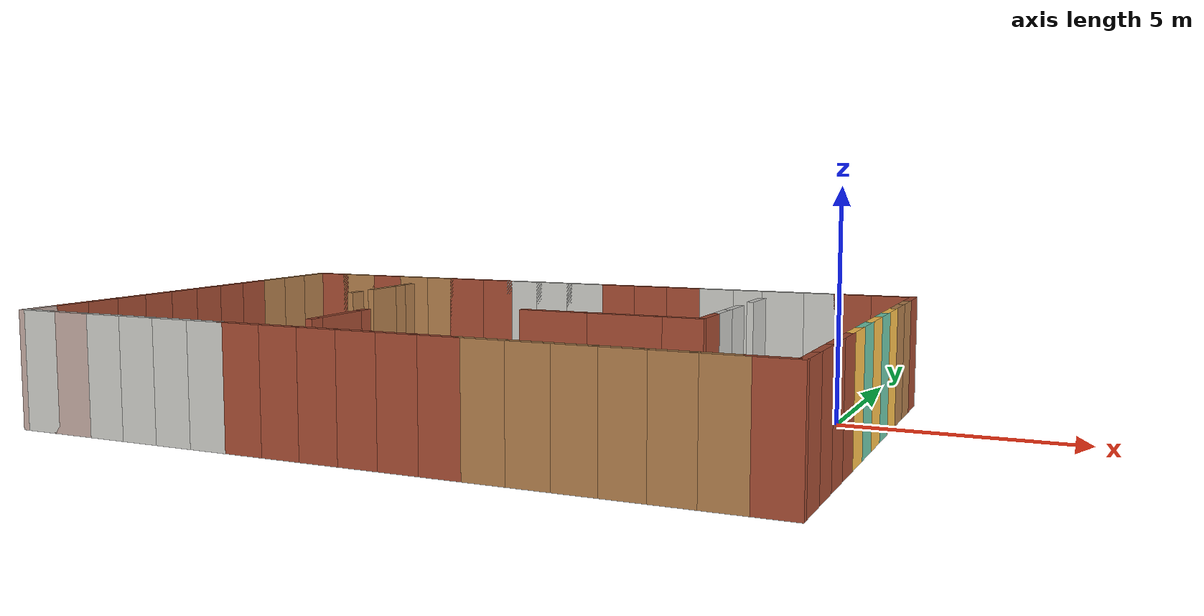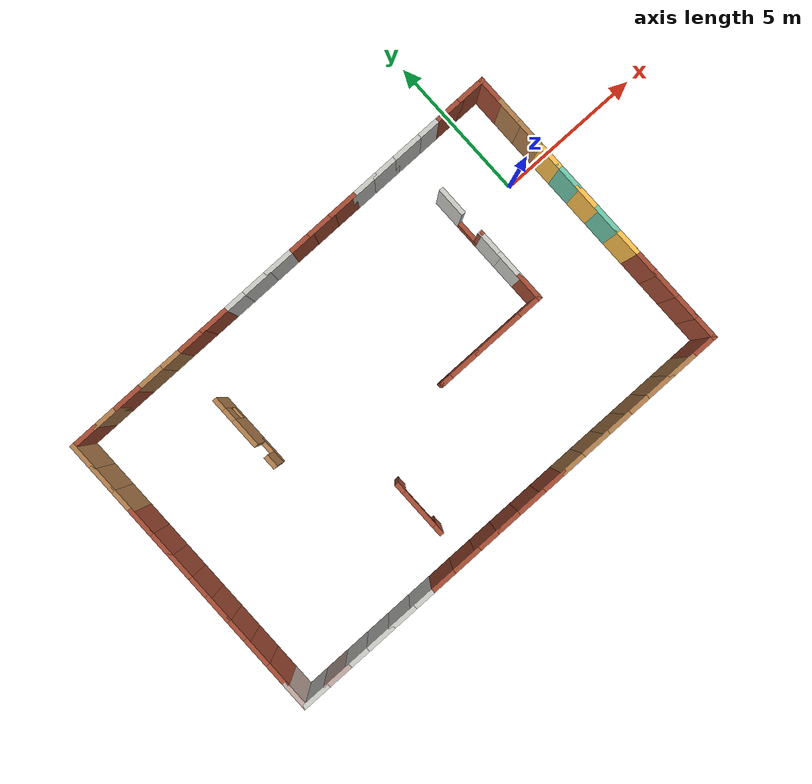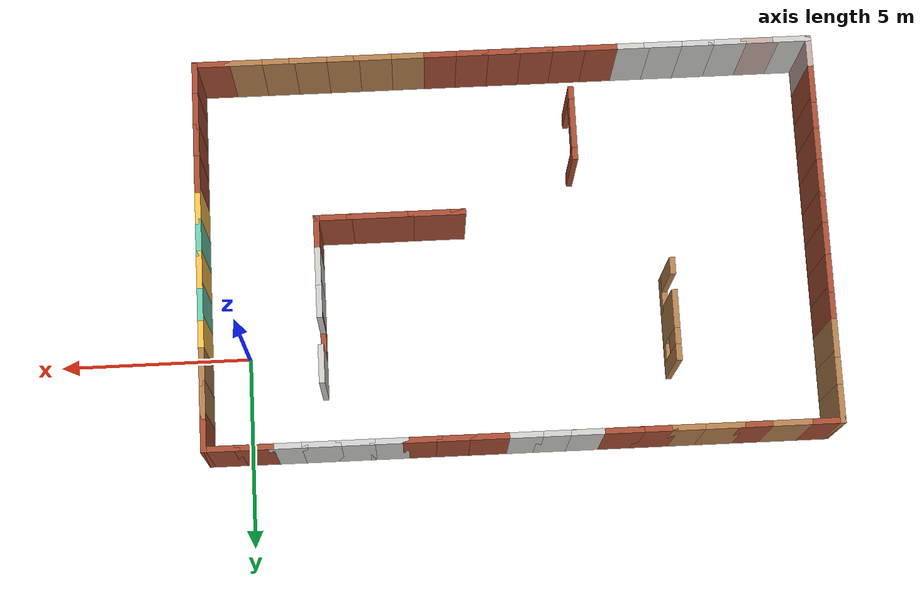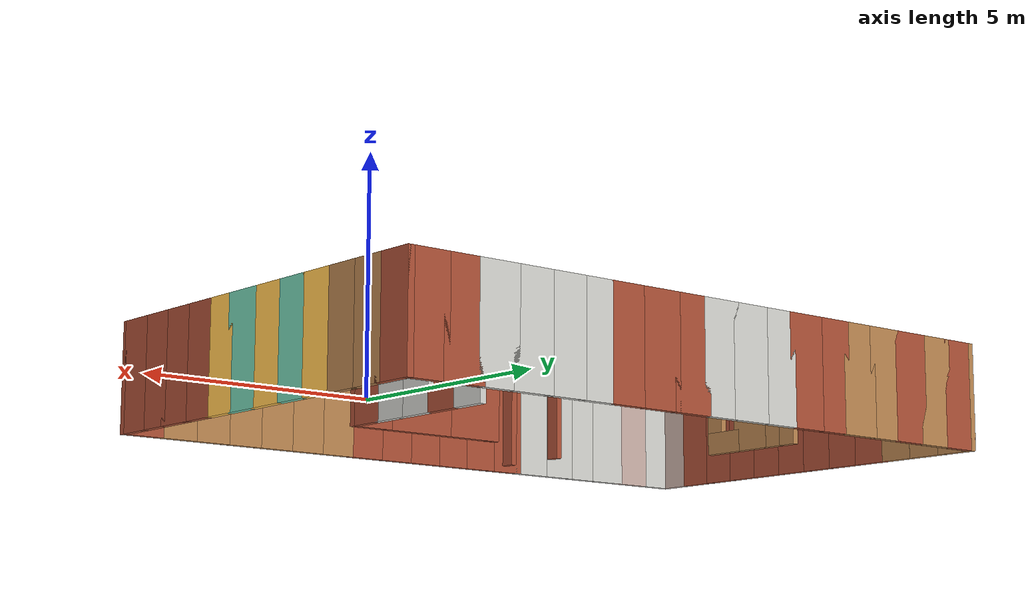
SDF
<?xml version='1.0'?>
<sdf version='1.7'>
  <model name='mapa05'>
    <pose>-7.01219 -2.35521 0 0 -0 0</pose>
    <link name='Wall_101'>
      <collision name='Wall_101_Collision'>
        <geometry>
          <box>
            <size>1 0.15 2.5</size>
          </box>
        </geometry>
        <pose>0 0 1.25 0 -0 0</pose>
      </collision>
      <visual name='Wall_101_Visual'>
        <pose>0 0 1.25 0 -0 0</pose>
        <geometry>
          <box>
            <size>1 0.15 2.5</size>
          </box>
        </geometry>
        <material>
          <script>
            <uri>file://media/materials/scripts/gazebo.material</uri>
            <name>Gazebo/Bricks</name>
          </script>
          <ambient>1 1 1 1</ambient>
        </material>
        <meta>
          <layer>0</layer>
        </meta>
      </visual>
      <pose>-8.075 2.125 0 0 -0 1.5708</pose>
    </link>
    <link name='Wall_102'>
      <collision name='Wall_102_Collision'>
        <geometry>
          <box>
            <size>1 0.15 2.5</size>
          </box>
        </geometry>
        <pose>0 0 1.25 0 -0 0</pose>
      </collision>
      <visual name='Wall_102_Visual'>
        <pose>0 0 1.25 0 -0 0</pose>
        <geometry>
          <box>
            <size>1 0.15 2.5</size>
          </box>
        </geometry>
        <material>
          <script>
            <uri>file://media/materials/scripts/gazebo.material</uri>
            <name>Gazebo/Wood</name>
          </script>
          <ambient>1 1 1 1</ambient>
        </material>
        <meta>
          <layer>0</layer>
        </meta>
      </visual>
      <pose>-8.075 2.975 0 0 -0 1.5708</pose>
    </link>
    <link name='Wall_103'>
      <collision name='Wall_103_Collision'>
        <geometry>
          <box>
            <size>1 0.15 2.5</size>
          </box>
        </geometry>
        <pose>0 0 1.25 0 -0 0</pose>
      </collision>
      <visual name='Wall_103_Visual'>
        <pose>0 0 1.25 0 -0 0</pose>
        <geometry>
          <box>
            <size>1 0.15 2.5</size>
          </box>
        </geometry>
        <material>
          <script>
            <uri>file://media/materials/scripts/gazebo.material</uri>
            <name>Gazebo/Wood</name>
          </script>
          <ambient>1 1 1 1</ambient>
        </material>
        <meta>
          <layer>0</layer>
        </meta>
      </visual>
      <pose>-8.075 3.825 0 0 -0 1.5708</pose>
    </link>
    <link name='Wall_104'>
      <collision name='Wall_104_Collision'>
        <geometry>
          <box>
            <size>1 0.15 2.5</size>
          </box>
        </geometry>
        <pose>0 0 1.25 0 -0 0</pose>
      </collision>
      <visual name='Wall_104_Visual'>
        <pose>0 0 1.25 0 -0 0</pose>
        <geometry>
          <box>
            <size>1 0.15 2.5</size>
          </box>
        </geometry>
        <material>
          <script>
            <uri>file://media/materials/scripts/gazebo.material</uri>
            <name>Gazebo/Wood</name>
          </script>
          <ambient>1 1 1 1</ambient>
        </material>
        <meta>
          <layer>0</layer>
        </meta>
      </visual>
      <pose>-8.075 4.675 0 0 -0 1.5708</pose>
    </link>
    <link name='Wall_105'>
      <collision name='Wall_105_Collision'>
        <geometry>
          <box>
            <size>1 0.15 2.5</size>
          </box>
        </geometry>
        <pose>0 0 1.25 0 -0 0</pose>
      </collision>
      <visual name='Wall_105_Visual'>
        <pose>0 0 1.25 0 -0 0</pose>
        <geometry>
          <box>
            <size>1 0.15 2.5</size>
          </box>
        </geometry>
        <material>
          <script>
            <uri>file://media/materials/scripts/gazebo.material</uri>
            <name>Gazebo/Bricks</name>
          </script>
          <ambient>1 1 1 1</ambient>
        </material>
        <meta>
          <layer>0</layer>
        </meta>
      </visual>
      <pose>-7.65 5.1 0 0 -0 0</pose>
    </link>
    <link name='Wall_106'>
      <collision name='Wall_106_Collision'>
        <geometry>
          <box>
            <size>1 0.15 2.5</size>
          </box>
        </geometry>
        <pose>0 0 1.25 0 -0 0</pose>
      </collision>
      <visual name='Wall_106_Visual'>
        <pose>0 0 1.25 0 -0 0</pose>
        <geometry>
          <box>
            <size>1 0.15 2.5</size>
          </box>
        </geometry>
        <material>
          <script>
            <uri>file://media/materials/scripts/gazebo.material</uri>
            <name>Gazebo/Wood</name>
          </script>
          <ambient>1 1 1 1</ambient>
        </material>
        <meta>
          <layer>0</layer>
        </meta>
      </visual>
      <pose>-6.8 5.1 0 0 -0 0</pose>
    </link>
    <link name='Wall_107'>
      <collision name='Wall_107_Collision'>
        <geometry>
          <box>
            <size>1 0.15 2.5</size>
          </box>
        </geometry>
        <pose>0 0 1.25 0 -0 0</pose>
      </collision>
      <visual name='Wall_107_Visual'>
        <pose>0 0 1.25 0 -0 0</pose>
        <geometry>
          <box>
            <size>1 0.15 2.5</size>
          </box>
        </geometry>
        <material>
          <script>
            <uri>file://media/materials/scripts/gazebo.material</uri>
            <name>Gazebo/Bricks</name>
          </script>
          <ambient>1 1 1 1</ambient>
        </material>
        <meta>
          <layer>0</layer>
        </meta>
      </visual>
      <pose>-5.95 5.1 0 0 -0 0</pose>
    </link>
    <link name='Wall_108'>
      <collision name='Wall_108_Collision'>
        <geometry>
          <box>
            <size>1 0.15 2.5</size>
          </box>
        </geometry>
        <pose>0 0 1.25 0 -0 0</pose>
      </collision>
      <visual name='Wall_108_Visual'>
        <pose>0 0 1.25 0 -0 0</pose>
        <geometry>
          <box>
            <size>1 0.15 2.5</size>
          </box>
        </geometry>
        <material>
          <script>
            <uri>file://media/materials/scripts/gazebo.material</uri>
            <name>Gazebo/Wood</name>
          </script>
          <ambient>1 1 1 1</ambient>
        </material>
        <meta>
          <layer>0</layer>
        </meta>
      </visual>
      <pose>-5.1 5.1 0 0 -0 0</pose>
    </link>
    <link name='Wall_109'>
      <collision name='Wall_109_Collision'>
        <geometry>
          <box>
            <size>1 0.15 2.5</size>
          </box>
        </geometry>
        <pose>0 0 1.25 0 -0 0</pose>
      </collision>
      <visual name='Wall_109_Visual'>
        <pose>0 0 1.25 0 -0 0</pose>
        <geometry>
          <box>
            <size>1 0.15 2.5</size>
          </box>
        </geometry>
        <material>
          <script>
            <uri>file://media/materials/scripts/gazebo.material</uri>
            <name>Gazebo/Wood</name>
          </script>
          <ambient>1 1 1 1</ambient>
        </material>
        <meta>
          <layer>0</layer>
        </meta>
      </visual>
      <pose>-4.25 5.1 0 0 -0 0</pose>
    </link>
    <link name='Wall_110'>
      <collision name='Wall_110_Collision'>
        <geometry>
          <box>
            <size>1 0.15 2.5</size>
          </box>
        </geometry>
        <pose>0 0 1.25 0 -0 0</pose>
      </collision>
      <visual name='Wall_110_Visual'>
        <pose>0 0 1.25 0 -0 0</pose>
        <geometry>
          <box>
            <size>1 0.15 2.5</size>
          </box>
        </geometry>
        <material>
          <script>
            <uri>file://media/materials/scripts/gazebo.material</uri>
            <name>Gazebo/Bricks</name>
          </script>
          <ambient>1 1 1 1</ambient>
        </material>
        <meta>
          <layer>0</layer>
        </meta>
      </visual>
      <pose>-3.4 5.1 0 0 -0 0</pose>
    </link>
    <link name='Wall_111'>
      <collision name='Wall_111_Collision'>
        <geometry>
          <box>
            <size>1 0.15 2.5</size>
          </box>
        </geometry>
        <pose>0 0 1.25 0 -0 0</pose>
      </collision>
      <visual name='Wall_111_Visual'>
        <pose>0 0 1.25 0 -0 0</pose>
        <geometry>
          <box>
            <size>1 0.15 2.5</size>
          </box>
        </geometry>
        <material>
          <script>
            <uri>file://media/materials/scripts/gazebo.material</uri>
            <name>Gazebo/Bricks</name>
          </script>
          <ambient>1 1 1 1</ambient>
        </material>
        <meta>
          <layer>0</layer>
        </meta>
      </visual>
      <pose>-2.55 5.1 0 0 -0 0</pose>
    </link>
    <link name='Wall_112'>
      <collision name='Wall_112_Collision'>
        <geometry>
          <box>
            <size>1 0.15 2.5</size>
          </box>
        </geometry>
        <pose>0 0 1.25 0 -0 0</pose>
      </collision>
      <visual name='Wall_112_Visual'>
        <pose>0 0 1.25 0 -0 0</pose>
        <geometry>
          <box>
            <size>1 0.15 2.5</size>
          </box>
        </geometry>
        <material>
          <script>
            <uri>file://media/materials/scripts/gazebo.material</uri>
            <name>Gazebo/CeilingTiled</name>
          </script>
          <ambient>0.921569 0.807843 0.615686 1</ambient>
        </material>
        <meta>
          <layer>0</layer>
        </meta>
      </visual>
      <pose>-1.7 5.1 0 0 -0 0</pose>
    </link>
    <link name='Wall_113'>
      <collision name='Wall_113_Collision'>
        <geometry>
          <box>
            <size>1 0.15 2.5</size>
          </box>
        </geometry>
        <pose>0 0 1.25 0 -0 0</pose>
      </collision>
      <visual name='Wall_113_Visual'>
        <pose>0 0 1.25 0 -0 0</pose>
        <geometry>
          <box>
            <size>1 0.15 2.5</size>
          </box>
        </geometry>
        <material>
          <script>
            <uri>file://media/materials/scripts/gazebo.material</uri>
            <name>Gazebo/CeilingTiled</name>
          </script>
          <ambient>0.921569 0.807843 0.615686 1</ambient>
        </material>
        <meta>
          <layer>0</layer>
        </meta>
      </visual>
      <pose>-0.85 5.1 0 0 -0 0</pose>
    </link>
    <link name='Wall_114'>
      <collision name='Wall_114_Collision'>
        <geometry>
          <box>
            <size>1 0.15 2.5</size>
          </box>
        </geometry>
        <pose>0 0 1.25 0 -0 0</pose>
      </collision>
      <visual name='Wall_114_Visual'>
        <pose>0 0 1.25 0 -0 0</pose>
        <geometry>
          <box>
            <size>1 0.15 2.5</size>
          </box>
        </geometry>
        <material>
          <script>
            <uri>file://media/materials/scripts/gazebo.material</uri>
            <name>Gazebo/CeilingTiled</name>
          </script>
          <ambient>0.921569 0.807843 0.615686 1</ambient>
        </material>
        <meta>
          <layer>0</layer>
        </meta>
      </visual>
      <pose>-0 5.1 0 0 -0 0</pose>
    </link>
    <link name='Wall_115'>
      <collision name='Wall_115_Collision'>
        <geometry>
          <box>
            <size>1 0.15 2.5</size>
          </box>
        </geometry>
        <pose>0 0 1.25 0 -0 0</pose>
      </collision>
      <visual name='Wall_115_Visual'>
        <pose>0 0 1.25 0 -0 0</pose>
        <geometry>
          <box>
            <size>1 0.15 2.5</size>
          </box>
        </geometry>
        <material>
          <script>
            <uri>file://media/materials/scripts/gazebo.material</uri>
            <name>Gazebo/Bricks</name>
          </script>
          <ambient>1 1 1 1</ambient>
        </material>
        <meta>
          <layer>0</layer>
        </meta>
      </visual>
      <pose>0.85 5.1 0 0 -0 0</pose>
    </link>
    <link name='Wall_116'>
      <collision name='Wall_116_Collision'>
        <geometry>
          <box>
            <size>1 0.15 2.5</size>
          </box>
        </geometry>
        <pose>0 0 1.25 0 -0 0</pose>
      </collision>
      <visual name='Wall_116_Visual'>
        <pose>0 0 1.25 0 -0 0</pose>
        <geometry>
          <box>
            <size>1 0.15 2.5</size>
          </box>
        </geometry>
        <material>
          <script>
            <uri>file://media/materials/scripts/gazebo.material</uri>
            <name>Gazebo/Bricks</name>
          </script>
          <ambient>1 1 1 1</ambient>
        </material>
        <meta>
          <layer>0</layer>
        </meta>
      </visual>
      <pose>1.7 5.1 0 0 -0 0</pose>
    </link>
    <link name='Wall_117'>
      <collision name='Wall_117_Collision'>
        <geometry>
          <box>
            <size>1 0.15 2.5</size>
          </box>
        </geometry>
        <pose>0 0 1.25 0 -0 0</pose>
      </collision>
      <visual name='Wall_117_Visual'>
        <pose>0 0 1.25 0 -0 0</pose>
        <geometry>
          <box>
            <size>1 0.15 2.5</size>
          </box>
        </geometry>
        <material>
          <script>
            <uri>file://media/materials/scripts/gazebo.material</uri>
            <name>Gazebo/Bricks</name>
          </script>
          <ambient>1 1 1 1</ambient>
        </material>
        <meta>
          <layer>0</layer>
        </meta>
      </visual>
      <pose>2.55 5.1 0 0 -0 0</pose>
    </link>
    <link name='Wall_118'>
      <collision name='Wall_118_Collision'>
        <geometry>
          <box>
            <size>1 0.15 2.5</size>
          </box>
        </geometry>
        <pose>0 0 1.25 0 -0 0</pose>
      </collision>
      <visual name='Wall_118_Visual'>
        <pose>0 0 1.25 0 -0 0</pose>
        <geometry>
          <box>
            <size>1 0.15 2.5</size>
          </box>
        </geometry>
        <material>
          <script>
            <uri>file://media/materials/scripts/gazebo.material</uri>
            <name>Gazebo/CeilingTiled</name>
          </script>
          <ambient>0.996078 0.47451 0.0196078 1</ambient>
        </material>
        <meta>
          <layer>0</layer>
        </meta>
      </visual>
      <pose>3.4 5.1 0 0 -0 0</pose>
    </link>
    <link name='Wall_119'>
      <collision name='Wall_119_Collision'>
        <geometry>
          <box>
            <size>1 0.15 2.5</size>
          </box>
        </geometry>
        <pose>0 0 1.25 0 -0 0</pose>
      </collision>
      <visual name='Wall_119_Visual'>
        <pose>0 0 1.25 0 -0 0</pose>
        <geometry>
          <box>
            <size>1 0.15 2.5</size>
          </box>
        </geometry>
        <material>
          <script>
            <uri>file://media/materials/scripts/gazebo.material</uri>
            <name>Gazebo/CeilingTiled</name>
          </script>
          <ambient>0.996078 0.47451 0.0196078 1</ambient>
        </material>
        <meta>
          <layer>0</layer>
        </meta>
      </visual>
      <pose>4.25 5.1 0 0 -0 0</pose>
    </link>
    <link name='Wall_120'>
      <collision name='Wall_120_Collision'>
        <geometry>
          <box>
            <size>1 0.15 2.5</size>
          </box>
        </geometry>
        <pose>0 0 1.25 0 -0 0</pose>
      </collision>
      <visual name='Wall_120_Visual'>
        <pose>0 0 1.25 0 -0 0</pose>
        <geometry>
          <box>
            <size>1 0.15 2.5</size>
          </box>
        </geometry>
        <material>
          <script>
            <uri>file://media/materials/scripts/gazebo.material</uri>
            <name>Gazebo/CeilingTiled</name>
          </script>
          <ambient>0.996078 0.47451 0.0196078 1</ambient>
        </material>
        <meta>
          <layer>0</layer>
        </meta>
      </visual>
      <pose>5.1 5.1 0 0 -0 0</pose>
    </link>
    <link name='Wall_121'>
      <collision name='Wall_121_Collision'>
        <geometry>
          <box>
            <size>1 0.15 2.5</size>
          </box>
        </geometry>
        <pose>0 0 1.25 0 -0 0</pose>
      </collision>
      <visual name='Wall_121_Visual'>
        <pose>0 0 1.25 0 -0 0</pose>
        <geometry>
          <box>
            <size>1 0.15 2.5</size>
          </box>
        </geometry>
        <material>
          <script>
            <uri>file://media/materials/scripts/gazebo.material</uri>
            <name>Gazebo/CeilingTiled</name>
          </script>
          <ambient>0.996078 0.47451 0.0196078 1</ambient>
        </material>
        <meta>
          <layer>0</layer>
        </meta>
      </visual>
      <pose>5.95 5.1 0 0 -0 0</pose>
    </link>
    <link name='Wall_122'>
      <collision name='Wall_122_Collision'>
        <geometry>
          <box>
            <size>1 0.15 2.5</size>
          </box>
        </geometry>
        <pose>0 0 1.25 0 -0 0</pose>
      </collision>
      <visual name='Wall_122_Visual'>
        <pose>0 0 1.25 0 -0 0</pose>
        <geometry>
          <box>
            <size>1 0.15 2.5</size>
          </box>
        </geometry>
        <material>
          <script>
            <uri>file://media/materials/scripts/gazebo.material</uri>
            <name>Gazebo/Bricks</name>
          </script>
          <ambient>1 1 1 1</ambient>
        </material>
        <meta>
          <layer>0</layer>
        </meta>
      </visual>
      <pose>6.8 5.1 0 0 -0 0</pose>
    </link>
    <link name='Wall_123'>
      <collision name='Wall_123_Collision'>
        <geometry>
          <box>
            <size>1 0.15 2.5</size>
          </box>
        </geometry>
        <pose>0 0 1.25 0 -0 0</pose>
      </collision>
      <visual name='Wall_123_Visual'>
        <pose>0 0 1.25 0 -0 0</pose>
        <geometry>
          <box>
            <size>1 0.15 2.5</size>
          </box>
        </geometry>
        <material>
          <script>
            <uri>file://media/materials/scripts/gazebo.material</uri>
            <name>Gazebo/Bricks</name>
          </script>
          <ambient>1 1 1 1</ambient>
        </material>
        <meta>
          <layer>0</layer>
        </meta>
      </visual>
      <pose>7.65 5.1 0 0 -0 0</pose>
    </link>
    <link name='Wall_127'>
      <collision name='Wall_127_Collision'>
        <geometry>
          <box>
            <size>1 0.15 2.5</size>
          </box>
        </geometry>
        <pose>0 0 1.25 0 -0 0</pose>
      </collision>
      <visual name='Wall_127_Visual'>
        <pose>0 0 1.25 0 -0 0</pose>
        <geometry>
          <box>
            <size>1 0.15 2.5</size>
          </box>
        </geometry>
        <material>
          <script>
            <uri>file://media/materials/scripts/gazebo.material</uri>
            <name>Gazebo/Grey</name>
          </script>
          <ambient>1 0.764706 0.305882 1</ambient>
        </material>
        <meta>
          <layer>0</layer>
        </meta>
      </visual>
      <pose>8.075 2.125 0 0 -0 -1.5708</pose>
    </link>
    <link name='Wall_128'>
      <collision name='Wall_128_Collision'>
        <geometry>
          <box>
            <size>1 0.15 2.5</size>
          </box>
        </geometry>
        <pose>0 0 1.25 0 -0 0</pose>
      </collision>
      <visual name='Wall_128_Visual'>
        <pose>0 0 1.25 0 -0 0</pose>
        <geometry>
          <box>
            <size>1 0.15 2.5</size>
          </box>
        </geometry>
        <material>
          <script>
            <uri>file://media/materials/scripts/gazebo.material</uri>
            <name>Gazebo/Grey</name>
          </script>
          <ambient>0.435294 0.796078 0.67451 1</ambient>
        </material>
        <meta>
          <layer>0</layer>
        </meta>
      </visual>
      <pose>8.075 1.275 0 0 -0 -1.5708</pose>
    </link>
    <link name='Wall_129'>
      <collision name='Wall_129_Collision'>
        <geometry>
          <box>
            <size>1 0.15 2.5</size>
          </box>
        </geometry>
        <pose>0 0 1.25 0 -0 0</pose>
      </collision>
      <visual name='Wall_129_Visual'>
        <pose>0 0 1.25 0 -0 0</pose>
        <geometry>
          <box>
            <size>1 0.15 2.5</size>
          </box>
        </geometry>
        <material>
          <script>
            <uri>file://media/materials/scripts/gazebo.material</uri>
            <name>Gazebo/Grey</name>
          </script>
          <ambient>1 0.764706 0.305882 1</ambient>
        </material>
        <meta>
          <layer>0</layer>
        </meta>
      </visual>
      <pose>8.075 0.425 0 0 -0 -1.5708</pose>
    </link>
    <link name='Wall_132'>
      <collision name='Wall_132_Collision'>
        <geometry>
          <box>
            <size>1 0.15 2.5</size>
          </box>
        </geometry>
        <pose>0 0 1.25 0 -0 0</pose>
      </collision>
      <visual name='Wall_132_Visual'>
        <pose>0 0 1.25 0 -0 0</pose>
        <geometry>
          <box>
            <size>1 0.15 2.5</size>
          </box>
        </geometry>
        <material>
          <script>
            <uri>file://media/materials/scripts/gazebo.material</uri>
            <name>Gazebo/Grey</name>
          </script>
          <ambient>0.435294 0.796078 0.67451 1</ambient>
        </material>
        <meta>
          <layer>0</layer>
        </meta>
      </visual>
      <pose>8.075 -0.425 0 0 -0 -1.5708</pose>
    </link>
    <link name='Wall_133'>
      <collision name='Wall_133_Collision'>
        <geometry>
          <box>
            <size>1 0.15 2.5</size>
          </box>
        </geometry>
        <pose>0 0 1.25 0 -0 0</pose>
      </collision>
      <visual name='Wall_133_Visual'>
        <pose>0 0 1.25 0 -0 0</pose>
        <geometry>
          <box>
            <size>1 0.15 2.5</size>
          </box>
        </geometry>
        <material>
          <script>
            <uri>file://media/materials/scripts/gazebo.material</uri>
            <name>Gazebo/Grey</name>
          </script>
          <ambient>1 0.764706 0.305882 1</ambient>
        </material>
        <meta>
          <layer>0</layer>
        </meta>
      </visual>
      <pose>8.075 -1.275 0 0 -0 -1.5708</pose>
    </link>
    <link name='Wall_134'>
      <collision name='Wall_134_Collision'>
        <geometry>
          <box>
            <size>1 0.15 2.5</size>
          </box>
        </geometry>
        <pose>0 0 1.25 0 -0 0</pose>
      </collision>
      <visual name='Wall_134_Visual'>
        <pose>0 0 1.25 0 -0 0</pose>
        <geometry>
          <box>
            <size>1 0.15 2.5</size>
          </box>
        </geometry>
        <material>
          <script>
            <uri>file://media/materials/scripts/gazebo.material</uri>
            <name>Gazebo/Bricks</name>
          </script>
          <ambient>1 1 1 1</ambient>
        </material>
        <meta>
          <layer>0</layer>
        </meta>
      </visual>
      <pose>8.075 -2.125 0 0 -0 -1.5708</pose>
    </link>
    <link name='Wall_135'>
      <collision name='Wall_135_Collision'>
        <geometry>
          <box>
            <size>1 0.15 2.5</size>
          </box>
        </geometry>
        <pose>0 0 1.25 0 -0 0</pose>
      </collision>
      <visual name='Wall_135_Visual'>
        <pose>0 0 1.25 0 -0 0</pose>
        <geometry>
          <box>
            <size>1 0.15 2.5</size>
          </box>
        </geometry>
        <material>
          <script>
            <uri>file://media/materials/scripts/gazebo.material</uri>
            <name>Gazebo/Bricks</name>
          </script>
          <ambient>1 1 1 1</ambient>
        </material>
        <meta>
          <layer>0</layer>
        </meta>
      </visual>
      <pose>8.075 -2.975 0 0 -0 -1.5708</pose>
    </link>
    <link name='Wall_136'>
      <collision name='Wall_136_Collision'>
        <geometry>
          <box>
            <size>1 0.15 2.5</size>
          </box>
        </geometry>
        <pose>0 0 1.25 0 -0 0</pose>
      </collision>
      <visual name='Wall_136_Visual'>
        <pose>0 0 1.25 0 -0 0</pose>
        <geometry>
          <box>
            <size>1 0.15 2.5</size>
          </box>
        </geometry>
        <material>
          <script>
            <uri>file://media/materials/scripts/gazebo.material</uri>
            <name>Gazebo/Bricks</name>
          </script>
          <ambient>1 1 1 1</ambient>
        </material>
        <meta>
          <layer>0</layer>
        </meta>
      </visual>
      <pose>8.075 -3.825 0 0 -0 -1.5708</pose>
    </link>
    <link name='Wall_137'>
      <collision name='Wall_137_Collision'>
        <geometry>
          <box>
            <size>1 0.15 2.5</size>
          </box>
        </geometry>
        <pose>0 0 1.25 0 -0 0</pose>
      </collision>
      <visual name='Wall_137_Visual'>
        <pose>0 0 1.25 0 -0 0</pose>
        <geometry>
          <box>
            <size>1 0.15 2.5</size>
          </box>
        </geometry>
        <material>
          <script>
            <uri>file://media/materials/scripts/gazebo.material</uri>
            <name>Gazebo/Bricks</name>
          </script>
          <ambient>1 1 1 1</ambient>
        </material>
        <meta>
          <layer>0</layer>
        </meta>
      </visual>
      <pose>8.075 -4.675 0 0 -0 -1.5708</pose>
    </link>
    <link name='Wall_141'>
      <collision name='Wall_141_Collision'>
        <geometry>
          <box>
            <size>1 0.15 2.5</size>
          </box>
        </geometry>
        <pose>0 0 1.25 0 -0 0</pose>
      </collision>
      <visual name='Wall_141_Visual'>
        <pose>0 0 1.25 0 -0 0</pose>
        <geometry>
          <box>
            <size>1 0.15 2.5</size>
          </box>
        </geometry>
        <material>
          <script>
            <uri>file://media/materials/scripts/gazebo.material</uri>
            <name>Gazebo/Bricks</name>
          </script>
          <ambient>1 1 1 1</ambient>
        </material>
        <meta>
          <layer>0</layer>
        </meta>
      </visual>
      <pose>8.075 4.675 0 0 -0 -1.5708</pose>
    </link>
    <link name='Wall_142'>
      <collision name='Wall_142_Collision'>
        <geometry>
          <box>
            <size>1 0.15 2.5</size>
          </box>
        </geometry>
        <pose>0 0 1.25 0 -0 0</pose>
      </collision>
      <visual name='Wall_142_Visual'>
        <pose>0 0 1.25 0 -0 0</pose>
        <geometry>
          <box>
            <size>1 0.15 2.5</size>
          </box>
        </geometry>
        <material>
          <script>
            <uri>file://media/materials/scripts/gazebo.material</uri>
            <name>Gazebo/Wood</name>
          </script>
          <ambient>1 1 1 1</ambient>
        </material>
        <meta>
          <layer>0</layer>
        </meta>
      </visual>
      <pose>8.075 3.825 0 0 -0 -1.5708</pose>
    </link>
    <link name='Wall_143'>
      <collision name='Wall_143_Collision'>
        <geometry>
          <box>
            <size>1 0.15 2.5</size>
          </box>
        </geometry>
        <pose>0 0 1.25 0 -0 0</pose>
      </collision>
      <visual name='Wall_143_Visual'>
        <pose>0 0 1.25 0 -0 0</pose>
        <geometry>
          <box>
            <size>1 0.15 2.5</size>
          </box>
        </geometry>
        <material>
          <script>
            <uri>file://media/materials/scripts/gazebo.material</uri>
            <name>Gazebo/Wood</name>
          </script>
          <ambient>1 1 1 1</ambient>
        </material>
        <meta>
          <layer>0</layer>
        </meta>
      </visual>
      <pose>8.075 2.975 0 0 -0 -1.5708</pose>
    </link>
    <link name='Wall_145'>
      <pose>-4.06574 2.86801 0 0 -0 -1.5708</pose>
      <visual name='Wall_145_Visual_0'>
        <pose>-0.290097 0 1.25 0 -0 0</pose>
        <geometry>
          <box>
            <size>0.419806 0.15 2.5</size>
          </box>
        </geometry>
        <material>
          <script>
            <uri>file://media/materials/scripts/gazebo.material</uri>
            <name>Gazebo/Wood</name>
          </script>
          <ambient>1 1 1 1</ambient>
        </material>
        <meta>
          <layer>0</layer>
        </meta>
      </visual>
      <collision name='Wall_145_Collision_0'>
        <geometry>
          <box>
            <size>0.419806 0.15 2.5</size>
          </box>
        </geometry>
        <pose>-0.290097 0 1.25 0 -0 0</pose>
      </collision>
      <visual name='Wall_145_Visual_1'>
        <pose>0.209903 0 0.25 0 -0 0</pose>
        <geometry>
          <box>
            <size>0.580194 0.15 0.5</size>
          </box>
        </geometry>
        <material>
          <script>
            <uri>file://media/materials/scripts/gazebo.material</uri>
            <name>Gazebo/Wood</name>
          </script>
          <ambient>1 1 1 1</ambient>
        </material>
        <meta>
          <layer>0</layer>
        </meta>
      </visual>
      <collision name='Wall_145_Collision_1'>
        <geometry>
          <box>
            <size>0.580194 0.15 0.5</size>
          </box>
        </geometry>
        <pose>0.209903 0 0.25 0 -0 0</pose>
      </collision>
      <visual name='Wall_145_Visual_2'>
        <pose>0.209903 0 1.9 0 -0 0</pose>
        <geometry>
          <box>
            <size>0.580194 0.15 1.2</size>
          </box>
        </geometry>
        <material>
          <script>
            <uri>file://media/materials/scripts/gazebo.material</uri>
            <name>Gazebo/Wood</name>
          </script>
          <ambient>1 1 1 1</ambient>
        </material>
        <meta>
          <layer>0</layer>
        </meta>
      </visual>
      <collision name='Wall_145_Collision_2'>
        <geometry>
          <box>
            <size>0.580194 0.15 1.2</size>
          </box>
        </geometry>
        <pose>0.209903 0 1.9 0 -0 0</pose>
      </collision>
    </link>
    <link name='Wall_146'>
      <collision name='Wall_146_Collision'>
        <geometry>
          <box>
            <size>1 0.15 2.5</size>
          </box>
        </geometry>
        <pose>0 0 1.25 0 -0 0</pose>
      </collision>
      <visual name='Wall_146_Visual'>
        <pose>0 0 1.25 0 -0 0</pose>
        <geometry>
          <box>
            <size>1 0.15 2.5</size>
          </box>
        </geometry>
        <material>
          <script>
            <uri>file://media/materials/scripts/gazebo.material</uri>
            <name>Gazebo/Wood</name>
          </script>
          <ambient>1 1 1 1</ambient>
        </material>
        <meta>
          <layer>0</layer>
        </meta>
      </visual>
      <pose>-4.06574 2.01801 0 0 -0 -1.5708</pose>
    </link>
    <link name='Wall_147'>
      <pose>-4.06574 1.16801 0 0 -0 -1.5708</pose>
      <visual name='Wall_147_Visual_0'>
        <pose>0 0 0.25 0 -0 0</pose>
        <geometry>
          <box>
            <size>1 0.15 0.5</size>
          </box>
        </geometry>
        <material>
          <script>
            <uri>file://media/materials/scripts/gazebo.material</uri>
            <name>Gazebo/Wood</name>
          </script>
          <ambient>1 1 1 1</ambient>
        </material>
        <meta>
          <layer>0</layer>
        </meta>
      </visual>
      <collision name='Wall_147_Collision_0'>
        <geometry>
          <box>
            <size>1 0.15 0.5</size>
          </box>
        </geometry>
        <pose>0 0 0.25 0 -0 0</pose>
      </collision>
      <visual name='Wall_147_Visual_1'>
        <pose>0.278607 0 1.5 0 -0 0</pose>
        <geometry>
          <box>
            <size>0.442787 0.15 2</size>
          </box>
        </geometry>
        <material>
          <script>
            <uri>file://media/materials/scripts/gazebo.material</uri>
            <name>Gazebo/Wood</name>
          </script>
          <ambient>1 1 1 1</ambient>
        </material>
        <meta>
          <layer>0</layer>
        </meta>
      </visual>
      <collision name='Wall_147_Collision_1'>
        <geometry>
          <box>
            <size>0.442787 0.15 2</size>
          </box>
        </geometry>
        <pose>0.278607 0 1.5 0 -0 0</pose>
      </collision>
    </link>
    <link name='Wall_149'>
      <collision name='Wall_149_Collision'>
        <geometry>
          <box>
            <size>1 0.15 2.5</size>
          </box>
        </geometry>
        <pose>0 0 1.25 0 -0 0</pose>
      </collision>
      <visual name='Wall_149_Visual'>
        <pose>0 0 1.25 0 -0 0</pose>
        <geometry>
          <box>
            <size>1 0.15 2.5</size>
          </box>
        </geometry>
        <material>
          <script>
            <uri>file://media/materials/scripts/gazebo.material</uri>
            <name>Gazebo/CeilingTiled</name>
          </script>
          <ambient>1 1 1 1</ambient>
        </material>
        <meta>
          <layer>0</layer>
        </meta>
      </visual>
      <pose>5.03152 3.02761 0 0 -0 -1.5708</pose>
    </link>
    <link name='Wall_150'>
      <pose>5.03152 2.17761 0 0 -0 -1.5708</pose>
      <visual name='Wall_150_Visual_0'>
        <pose>0 0 0.25 0 -0 0</pose>
        <geometry>
          <box>
            <size>1 0.15 0.5</size>
          </box>
        </geometry>
        <material>
          <script>
            <uri>file://media/materials/scripts/gazebo.material</uri>
            <name>Gazebo/Bricks</name>
          </script>
          <ambient>1 1 1 1</ambient>
        </material>
        <meta>
          <layer>0</layer>
        </meta>
      </visual>
      <collision name='Wall_150_Collision_0'>
        <geometry>
          <box>
            <size>1 0.15 0.5</size>
          </box>
        </geometry>
        <pose>0 0 0.25 0 -0 0</pose>
      </collision>
      <visual name='Wall_150_Visual_1'>
        <pose>0.437605 0 1.5 0 -0 0</pose>
        <geometry>
          <box>
            <size>0.124791 0.15 2</size>
          </box>
        </geometry>
        <material>
          <script>
            <uri>file://media/materials/scripts/gazebo.material</uri>
            <name>Gazebo/Bricks</name>
          </script>
          <ambient>1 1 1 1</ambient>
        </material>
        <meta>
          <layer>0</layer>
        </meta>
      </visual>
      <collision name='Wall_150_Collision_1'>
        <geometry>
          <box>
            <size>0.124791 0.15 2</size>
          </box>
        </geometry>
        <pose>0.437605 0 1.5 0 -0 0</pose>
      </collision>
    </link>
    <link name='Wall_152'>
      <collision name='Wall_152_Collision'>
        <geometry>
          <box>
            <size>1 0.15 2.5</size>
          </box>
        </geometry>
        <pose>0 0 1.25 0 -0 0</pose>
      </collision>
      <visual name='Wall_152_Visual'>
        <pose>0 0 1.25 0 -0 0</pose>
        <geometry>
          <box>
            <size>1 0.15 2.5</size>
          </box>
        </geometry>
        <material>
          <script>
            <uri>file://media/materials/scripts/gazebo.material</uri>
            <name>Gazebo/CeilingTiled</name>
          </script>
          <ambient>1 1 1 1</ambient>
        </material>
        <meta>
          <layer>0</layer>
        </meta>
      </visual>
      <pose>5.03152 1.32761 0 0 -0 -1.5708</pose>
    </link>
    <link name='Wall_153'>
      <pose>5.03152 0.477607 0 0 -0 -1.5708</pose>
      <visual name='Wall_153_Visual_0'>
        <pose>0 0 1.25 0 -0 0</pose>
        <geometry>
          <box>
            <size>1 0.15 2.5</size>
          </box>
        </geometry>
        <material>
          <script>
            <uri>file://media/materials/scripts/gazebo.material</uri>
            <name>Gazebo/CeilingTiled</name>
          </script>
          <ambient>1 1 1 1</ambient>
        </material>
        <meta>
          <layer>0</layer>
        </meta>
      </visual>
      <collision name='Wall_153_Collision_0'>
        <geometry>
          <box>
            <size>1 0.15 2.5</size>
          </box>
        </geometry>
        <pose>0 0 1.25 0 -0 0</pose>
      </collision>
    </link>
    <link name='Wall_154'>
      <collision name='Wall_154_Collision'>
        <geometry>
          <box>
            <size>1 0.15 2.5</size>
          </box>
        </geometry>
        <pose>0 0 1.25 0 -0 0</pose>
      </collision>
      <visual name='Wall_154_Visual'>
        <pose>0 0 1.25 0 -0 0</pose>
        <geometry>
          <box>
            <size>1 0.15 2.5</size>
          </box>
        </geometry>
        <material>
          <script>
            <uri>file://media/materials/scripts/gazebo.material</uri>
            <name>Gazebo/Bricks</name>
          </script>
          <ambient>1 1 1 1</ambient>
        </material>
        <meta>
          <layer>0</layer>
        </meta>
      </visual>
      <pose>5.03152 -0.372393 0 0 -0 -1.5708</pose>
    </link>
    <link name='Wall_155'>
      <collision name='Wall_155_Collision'>
        <geometry>
          <box>
            <size>1 0.15 2.5</size>
          </box>
        </geometry>
        <pose>0 0 1.25 0 -0 0</pose>
      </collision>
      <visual name='Wall_155_Visual'>
        <pose>0 0 1.25 0 -0 0</pose>
        <geometry>
          <box>
            <size>1 0.15 2.5</size>
          </box>
        </geometry>
        <material>
          <script>
            <uri>file://media/materials/scripts/gazebo.material</uri>
            <name>Gazebo/Bricks</name>
          </script>
          <ambient>1 1 1 1</ambient>
        </material>
        <meta>
          <layer>0</layer>
        </meta>
      </visual>
      <pose>4.60652 -0.797393 0 0 -0 3.14159</pose>
    </link>
    <link name='Wall_156'>
      <collision name='Wall_156_Collision'>
        <geometry>
          <box>
            <size>1.75 0.15 2.5</size>
          </box>
        </geometry>
        <pose>0 0 1.25 0 -0 0</pose>
      </collision>
      <visual name='Wall_156_Visual'>
        <pose>0 0 1.25 0 -0 0</pose>
        <geometry>
          <box>
            <size>1.75 0.15 2.5</size>
          </box>
        </geometry>
        <material>
          <script>
            <uri>file://media/materials/scripts/gazebo.material</uri>
            <name>Gazebo/Bricks</name>
          </script>
          <ambient>1 1 1 1</ambient>
        </material>
        <meta>
          <layer>0</layer>
        </meta>
      </visual>
      <pose>3.38152 -0.797393 0 0 -0 3.14159</pose>
    </link>
    <link name='Wall_157'>
      <pose>1.90652 -0.797393 0 0 -0 3.14159</pose>
      <visual name='Wall_157_Visual_0'>
        <pose>0 0 1.25 0 -0 0</pose>
        <geometry>
          <box>
            <size>1.5 0.15 2.5</size>
          </box>
        </geometry>
        <material>
          <script>
            <uri>file://media/materials/scripts/gazebo.material</uri>
            <name>Gazebo/Bricks</name>
          </script>
          <ambient>1 1 1 1</ambient>
        </material>
        <meta>
          <layer>0</layer>
        </meta>
      </visual>
      <collision name='Wall_157_Collision_0'>
        <geometry>
          <box>
            <size>1.5 0.15 2.5</size>
          </box>
        </geometry>
        <pose>0 0 1.25 0 -0 0</pose>
      </collision>
      <visual name='Wall_157_Visual_1'>
        <pose>0.547061 0 1.25 0 -0 0</pose>
        <geometry>
          <box>
            <size>0.405877 0.15 2.5</size>
          </box>
        </geometry>
        <material>
          <script>
            <uri>file://media/materials/scripts/gazebo.material</uri>
            <name>Gazebo/Bricks</name>
          </script>
          <ambient>1 1 1 1</ambient>
        </material>
        <meta>
          <layer>0</layer>
        </meta>
      </visual>
      <collision name='Wall_157_Collision_1'>
        <geometry>
          <box>
            <size>0.405877 0.15 2.5</size>
          </box>
        </geometry>
        <pose>0.547061 0 1.25 0 -0 0</pose>
      </collision>
    </link>
    <link name='Wall_159'>
      <pose>-1.75153 -3.05843 0 0 -0 -1.5708</pose>
      <visual name='Wall_159_Visual_0'>
        <pose>-0.835047 0 1.25 0 -0 0</pose>
        <geometry>
          <box>
            <size>0.329905 0.15 2.5</size>
          </box>
        </geometry>
        <material>
          <script>
            <uri>file://media/materials/scripts/gazebo.material</uri>
            <name>Gazebo/Bricks</name>
          </script>
          <ambient>1 1 1 1</ambient>
        </material>
        <meta>
          <layer>0</layer>
        </meta>
      </visual>
      <collision name='Wall_159_Collision_0'>
        <geometry>
          <box>
            <size>0.329905 0.15 2.5</size>
          </box>
        </geometry>
        <pose>-0.835047 0 1.25 0 -0 0</pose>
      </collision>
      <visual name='Wall_159_Visual_1'>
        <pose>0.827754 0 1.25 0 -0 0</pose>
        <geometry>
          <box>
            <size>0.344492 0.15 2.5</size>
          </box>
        </geometry>
        <material>
          <script>
            <uri>file://media/materials/scripts/gazebo.material</uri>
            <name>Gazebo/Bricks</name>
          </script>
          <ambient>1 1 1 1</ambient>
        </material>
        <meta>
          <layer>0</layer>
        </meta>
      </visual>
      <collision name='Wall_159_Collision_1'>
        <geometry>
          <box>
            <size>0.344492 0.15 2.5</size>
          </box>
        </geometry>
        <pose>0.827754 0 1.25 0 -0 0</pose>
      </collision>
      <visual name='Wall_159_Visual_2'>
        <pose>-0.007293 0 2.25 0 -0 0</pose>
        <geometry>
          <box>
            <size>1.3256 0.15 0.5</size>
          </box>
        </geometry>
        <material>
          <script>
            <uri>file://media/materials/scripts/gazebo.material</uri>
            <name>Gazebo/Bricks</name>
          </script>
          <ambient>1 1 1 1</ambient>
        </material>
        <meta>
          <layer>0</layer>
        </meta>
      </visual>
      <collision name='Wall_159_Collision_2'>
        <geometry>
          <box>
            <size>1.3256 0.15 0.5</size>
          </box>
        </geometry>
        <pose>-0.007293 0 2.25 0 -0 0</pose>
      </collision>
    </link>
    <link name='Wall_70'>
      <collision name='Wall_70_Collision'>
        <geometry>
          <box>
            <size>1 0.15 2.5</size>
          </box>
        </geometry>
        <pose>0 0 1.25 0 -0 0</pose>
      </collision>
      <visual name='Wall_70_Visual'>
        <pose>0 0 1.25 0 -0 0</pose>
        <geometry>
          <box>
            <size>1 0.15 2.5</size>
          </box>
        </geometry>
        <material>
          <script>
            <uri>file://media/materials/scripts/gazebo.material</uri>
            <name>Gazebo/Bricks</name>
          </script>
          <ambient>1 1 1 1</ambient>
        </material>
        <meta>
          <layer>0</layer>
        </meta>
      </visual>
      <pose>7.65 -5.1 0 0 -0 3.14159</pose>
    </link>
    <link name='Wall_71'>
      <collision name='Wall_71_Collision'>
        <geometry>
          <box>
            <size>1 0.15 2.5</size>
          </box>
        </geometry>
        <pose>0 0 1.25 0 -0 0</pose>
      </collision>
      <visual name='Wall_71_Visual'>
        <pose>0 0 1.25 0 -0 0</pose>
        <geometry>
          <box>
            <size>1 0.15 2.5</size>
          </box>
        </geometry>
        <material>
          <script>
            <uri>file://media/materials/scripts/gazebo.material</uri>
            <name>Gazebo/Wood</name>
          </script>
          <ambient>1 1 1 1</ambient>
        </material>
        <meta>
          <layer>0</layer>
        </meta>
      </visual>
      <pose>6.8 -5.1 0 0 -0 3.14159</pose>
    </link>
    <link name='Wall_72'>
      <collision name='Wall_72_Collision'>
        <geometry>
          <box>
            <size>1 0.15 2.5</size>
          </box>
        </geometry>
        <pose>0 0 1.25 0 -0 0</pose>
      </collision>
      <visual name='Wall_72_Visual'>
        <pose>0 0 1.25 0 -0 0</pose>
        <geometry>
          <box>
            <size>1 0.15 2.5</size>
          </box>
        </geometry>
        <material>
          <script>
            <uri>file://media/materials/scripts/gazebo.material</uri>
            <name>Gazebo/Wood</name>
          </script>
          <ambient>1 1 1 1</ambient>
        </material>
        <meta>
          <layer>0</layer>
        </meta>
      </visual>
      <pose>5.95 -5.1 0 0 -0 3.14159</pose>
    </link>
    <link name='Wall_73'>
      <collision name='Wall_73_Collision'>
        <geometry>
          <box>
            <size>1 0.15 2.5</size>
          </box>
        </geometry>
        <pose>0 0 1.25 0 -0 0</pose>
      </collision>
      <visual name='Wall_73_Visual'>
        <pose>0 0 1.25 0 -0 0</pose>
        <geometry>
          <box>
            <size>1 0.15 2.5</size>
          </box>
        </geometry>
        <material>
          <script>
            <uri>file://media/materials/scripts/gazebo.material</uri>
            <name>Gazebo/Wood</name>
          </script>
          <ambient>1 1 1 1</ambient>
        </material>
        <meta>
          <layer>0</layer>
        </meta>
      </visual>
      <pose>5.1 -5.1 0 0 -0 3.14159</pose>
    </link>
    <link name='Wall_74'>
      <collision name='Wall_74_Collision'>
        <geometry>
          <box>
            <size>1 0.15 2.5</size>
          </box>
        </geometry>
        <pose>0 0 1.25 0 -0 0</pose>
      </collision>
      <visual name='Wall_74_Visual'>
        <pose>0 0 1.25 0 -0 0</pose>
        <geometry>
          <box>
            <size>1 0.15 2.5</size>
          </box>
        </geometry>
        <material>
          <script>
            <uri>file://media/materials/scripts/gazebo.material</uri>
            <name>Gazebo/Wood</name>
          </script>
          <ambient>1 1 1 1</ambient>
        </material>
        <meta>
          <layer>0</layer>
        </meta>
      </visual>
      <pose>4.25 -5.1 0 0 -0 3.14159</pose>
    </link>
    <link name='Wall_75'>
      <collision name='Wall_75_Collision'>
        <geometry>
          <box>
            <size>1 0.15 2.5</size>
          </box>
        </geometry>
        <pose>0 0 1.25 0 -0 0</pose>
      </collision>
      <visual name='Wall_75_Visual'>
        <pose>0 0 1.25 0 -0 0</pose>
        <geometry>
          <box>
            <size>1 0.15 2.5</size>
          </box>
        </geometry>
        <material>
          <script>
            <uri>file://media/materials/scripts/gazebo.material</uri>
            <name>Gazebo/Wood</name>
          </script>
          <ambient>1 1 1 1</ambient>
        </material>
        <meta>
          <layer>0</layer>
        </meta>
      </visual>
      <pose>3.4 -5.1 0 0 -0 3.14159</pose>
    </link>
    <link name='Wall_76'>
      <collision name='Wall_76_Collision'>
        <geometry>
          <box>
            <size>1 0.15 2.5</size>
          </box>
        </geometry>
        <pose>0 0 1.25 0 -0 0</pose>
      </collision>
      <visual name='Wall_76_Visual'>
        <pose>0 0 1.25 0 -0 0</pose>
        <geometry>
          <box>
            <size>1 0.15 2.5</size>
          </box>
        </geometry>
        <material>
          <script>
            <uri>file://media/materials/scripts/gazebo.material</uri>
            <name>Gazebo/Wood</name>
          </script>
          <ambient>1 1 1 1</ambient>
        </material>
        <meta>
          <layer>0</layer>
        </meta>
      </visual>
      <pose>2.55 -5.1 0 0 -0 3.14159</pose>
    </link>
    <link name='Wall_77'>
      <collision name='Wall_77_Collision'>
        <geometry>
          <box>
            <size>1 0.15 2.5</size>
          </box>
        </geometry>
        <pose>0 0 1.25 0 -0 0</pose>
      </collision>
      <visual name='Wall_77_Visual'>
        <pose>0 0 1.25 0 -0 0</pose>
        <geometry>
          <box>
            <size>1 0.15 2.5</size>
          </box>
        </geometry>
        <material>
          <script>
            <uri>file://media/materials/scripts/gazebo.material</uri>
            <name>Gazebo/Bricks</name>
          </script>
          <ambient>1 1 1 1</ambient>
        </material>
        <meta>
          <layer>0</layer>
        </meta>
      </visual>
      <pose>1.7 -5.1 0 0 -0 3.14159</pose>
    </link>
    <link name='Wall_78'>
      <collision name='Wall_78_Collision'>
        <geometry>
          <box>
            <size>1 0.15 2.5</size>
          </box>
        </geometry>
        <pose>0 0 1.25 0 -0 0</pose>
      </collision>
      <visual name='Wall_78_Visual'>
        <pose>0 0 1.25 0 -0 0</pose>
        <geometry>
          <box>
            <size>1 0.15 2.5</size>
          </box>
        </geometry>
        <material>
          <script>
            <uri>file://media/materials/scripts/gazebo.material</uri>
            <name>Gazebo/Bricks</name>
          </script>
          <ambient>1 1 1 1</ambient>
        </material>
        <meta>
          <layer>0</layer>
        </meta>
      </visual>
      <pose>0.85 -5.1 0 0 -0 3.14159</pose>
    </link>
    <link name='Wall_79'>
      <collision name='Wall_79_Collision'>
        <geometry>
          <box>
            <size>1 0.15 2.5</size>
          </box>
        </geometry>
        <pose>0 0 1.25 0 -0 0</pose>
      </collision>
      <visual name='Wall_79_Visual'>
        <pose>0 0 1.25 0 -0 0</pose>
        <geometry>
          <box>
            <size>1 0.15 2.5</size>
          </box>
        </geometry>
        <material>
          <script>
            <uri>file://media/materials/scripts/gazebo.material</uri>
            <name>Gazebo/Bricks</name>
          </script>
          <ambient>1 1 1 1</ambient>
        </material>
        <meta>
          <layer>0</layer>
        </meta>
      </visual>
      <pose>-0 -5.1 0 0 -0 3.14159</pose>
    </link>
    <link name='Wall_80'>
      <collision name='Wall_80_Collision'>
        <geometry>
          <box>
            <size>1 0.15 2.5</size>
          </box>
        </geometry>
        <pose>0 0 1.25 0 -0 0</pose>
      </collision>
      <visual name='Wall_80_Visual'>
        <pose>0 0 1.25 0 -0 0</pose>
        <geometry>
          <box>
            <size>1 0.15 2.5</size>
          </box>
        </geometry>
        <material>
          <script>
            <uri>file://media/materials/scripts/gazebo.material</uri>
            <name>Gazebo/Bricks</name>
          </script>
          <ambient>1 1 1 1</ambient>
        </material>
        <meta>
          <layer>0</layer>
        </meta>
      </visual>
      <pose>-0.85 -5.1 0 0 -0 3.14159</pose>
    </link>
    <link name='Wall_81'>
      <collision name='Wall_81_Collision'>
        <geometry>
          <box>
            <size>1 0.15 2.5</size>
          </box>
        </geometry>
        <pose>0 0 1.25 0 -0 0</pose>
      </collision>
      <visual name='Wall_81_Visual'>
        <pose>0 0 1.25 0 -0 0</pose>
        <geometry>
          <box>
            <size>1 0.15 2.5</size>
          </box>
        </geometry>
        <material>
          <script>
            <uri>file://media/materials/scripts/gazebo.material</uri>
            <name>Gazebo/Bricks</name>
          </script>
          <ambient>1 1 1 1</ambient>
        </material>
        <meta>
          <layer>0</layer>
        </meta>
      </visual>
      <pose>-1.7 -5.1 0 0 -0 3.14159</pose>
    </link>
    <link name='Wall_82'>
      <collision name='Wall_82_Collision'>
        <geometry>
          <box>
            <size>1 0.15 2.5</size>
          </box>
        </geometry>
        <pose>0 0 1.25 0 -0 0</pose>
      </collision>
      <visual name='Wall_82_Visual'>
        <pose>0 0 1.25 0 -0 0</pose>
        <geometry>
          <box>
            <size>1 0.15 2.5</size>
          </box>
        </geometry>
        <material>
          <script>
            <uri>file://media/materials/scripts/gazebo.material</uri>
            <name>Gazebo/Bricks</name>
          </script>
          <ambient>1 1 1 1</ambient>
        </material>
        <meta>
          <layer>0</layer>
        </meta>
      </visual>
      <pose>-2.55 -5.1 0 0 -0 3.14159</pose>
    </link>
    <link name='Wall_83'>
      <collision name='Wall_83_Collision'>
        <geometry>
          <box>
            <size>1 0.15 2.5</size>
          </box>
        </geometry>
        <pose>0 0 1.25 0 -0 0</pose>
      </collision>
      <visual name='Wall_83_Visual'>
        <pose>0 0 1.25 0 -0 0</pose>
        <geometry>
          <box>
            <size>1 0.15 2.5</size>
          </box>
        </geometry>
        <material>
          <script>
            <uri>file://media/materials/scripts/gazebo.material</uri>
            <name>Gazebo/CeilingTiled</name>
          </script>
          <ambient>0.760784 0.662745 0.627451 1</ambient>
        </material>
        <meta>
          <layer>0</layer>
        </meta>
      </visual>
      <pose>-3.4 -5.1 0 0 -0 3.14159</pose>
    </link>
    <link name='Wall_84'>
      <collision name='Wall_84_Collision'>
        <geometry>
          <box>
            <size>1 0.15 2.5</size>
          </box>
        </geometry>
        <pose>0 0 1.25 0 -0 0</pose>
      </collision>
      <visual name='Wall_84_Visual'>
        <pose>0 0 1.25 0 -0 0</pose>
        <geometry>
          <box>
            <size>1 0.15 2.5</size>
          </box>
        </geometry>
        <material>
          <script>
            <uri>file://media/materials/scripts/gazebo.material</uri>
            <name>Gazebo/CeilingTiled</name>
          </script>
          <ambient>0.760784 0.662745 0.627451 1</ambient>
        </material>
        <meta>
          <layer>0</layer>
        </meta>
      </visual>
      <pose>-4.25 -5.1 0 0 -0 3.14159</pose>
    </link>
    <link name='Wall_85'>
      <collision name='Wall_85_Collision'>
        <geometry>
          <box>
            <size>1 0.15 2.5</size>
          </box>
        </geometry>
        <pose>0 0 1.25 0 -0 0</pose>
      </collision>
      <visual name='Wall_85_Visual'>
        <pose>0 0 1.25 0 -0 0</pose>
        <geometry>
          <box>
            <size>1 0.15 2.5</size>
          </box>
        </geometry>
        <material>
          <script>
            <uri>file://media/materials/scripts/gazebo.material</uri>
            <name>Gazebo/CeilingTiled</name>
          </script>
          <ambient>0.760784 0.662745 0.627451 1</ambient>
        </material>
        <meta>
          <layer>0</layer>
        </meta>
      </visual>
      <pose>-5.1 -5.1 0 0 -0 3.14159</pose>
    </link>
    <link name='Wall_86'>
      <collision name='Wall_86_Collision'>
        <geometry>
          <box>
            <size>1 0.15 2.5</size>
          </box>
        </geometry>
        <pose>0 0 1.25 0 -0 0</pose>
      </collision>
      <visual name='Wall_86_Visual'>
        <pose>0 0 1.25 0 -0 0</pose>
        <geometry>
          <box>
            <size>1 0.15 2.5</size>
          </box>
        </geometry>
        <material>
          <script>
            <uri>file://media/materials/scripts/gazebo.material</uri>
            <name>Gazebo/CeilingTiled</name>
          </script>
          <ambient>0.760784 0.662745 0.627451 1</ambient>
        </material>
        <meta>
          <layer>0</layer>
        </meta>
      </visual>
      <pose>-5.95 -5.1 0 0 -0 3.14159</pose>
    </link>
    <link name='Wall_87'>
      <collision name='Wall_87_Collision'>
        <geometry>
          <box>
            <size>1 0.15 2.5</size>
          </box>
        </geometry>
        <pose>0 0 1.25 0 -0 0</pose>
      </collision>
      <visual name='Wall_87_Visual'>
        <pose>0 0 1.25 0 -0 0</pose>
        <geometry>
          <box>
            <size>1 0.15 2.5</size>
          </box>
        </geometry>
        <material>
          <script>
            <uri>file://media/materials/scripts/gazebo.material</uri>
            <name>Gazebo/Grey</name>
          </script>
          <ambient>0.760784 0.662745 0.627451 1</ambient>
        </material>
        <meta>
          <layer>0</layer>
        </meta>
      </visual>
      <pose>-6.8 -5.1 0 0 -0 3.14159</pose>
    </link>
    <link name='Wall_88'>
      <collision name='Wall_88_Collision'>
        <geometry>
          <box>
            <size>1 0.15 2.5</size>
          </box>
        </geometry>
        <pose>0 0 1.25 0 -0 0</pose>
      </collision>
      <visual name='Wall_88_Visual'>
        <pose>0 0 1.25 0 -0 0</pose>
        <geometry>
          <box>
            <size>1 0.15 2.5</size>
          </box>
        </geometry>
        <material>
          <script>
            <uri>file://media/materials/scripts/gazebo.material</uri>
            <name>Gazebo/CeilingTiled</name>
          </script>
          <ambient>0.760784 0.662745 0.627451 1</ambient>
        </material>
        <meta>
          <layer>0</layer>
        </meta>
      </visual>
      <pose>-7.65 -5.1 0 0 -0 3.14159</pose>
    </link>
    <link name='Wall_92'>
      <collision name='Wall_92_Collision'>
        <geometry>
          <box>
            <size>1 0.15 2.5</size>
          </box>
        </geometry>
        <pose>0 0 1.25 0 -0 0</pose>
      </collision>
      <visual name='Wall_92_Visual'>
        <pose>0 0 1.25 0 -0 0</pose>
        <geometry>
          <box>
            <size>1 0.15 2.5</size>
          </box>
        </geometry>
        <material>
          <script>
            <uri>file://media/materials/scripts/gazebo.material</uri>
            <name>Gazebo/Grey</name>
          </script>
          <ambient>0.760784 0.662745 0.627451 1</ambient>
        </material>
        <meta>
          <layer>0</layer>
        </meta>
      </visual>
      <pose>-8.075 -4.675 0 0 -0 1.5708</pose>
    </link>
    <link name='Wall_93'>
      <collision name='Wall_93_Collision'>
        <geometry>
          <box>
            <size>1 0.15 2.5</size>
          </box>
        </geometry>
        <pose>0 0 1.25 0 -0 0</pose>
      </collision>
      <visual name='Wall_93_Visual'>
        <pose>0 0 1.25 0 -0 0</pose>
        <geometry>
          <box>
            <size>1 0.15 2.5</size>
          </box>
        </geometry>
        <material>
          <script>
            <uri>file://media/materials/scripts/gazebo.material</uri>
            <name>Gazebo/Bricks</name>
          </script>
          <ambient>1 1 1 1</ambient>
        </material>
        <meta>
          <layer>0</layer>
        </meta>
      </visual>
      <pose>-8.075 -3.825 0 0 -0 1.5708</pose>
    </link>
    <link name='Wall_94'>
      <collision name='Wall_94_Collision'>
        <geometry>
          <box>
            <size>1 0.15 2.5</size>
          </box>
        </geometry>
        <pose>0 0 1.25 0 -0 0</pose>
      </collision>
      <visual name='Wall_94_Visual'>
        <pose>0 0 1.25 0 -0 0</pose>
        <geometry>
          <box>
            <size>1 0.15 2.5</size>
          </box>
        </geometry>
        <material>
          <script>
            <uri>file://media/materials/scripts/gazebo.material</uri>
            <name>Gazebo/Bricks</name>
          </script>
          <ambient>1 1 1 1</ambient>
        </material>
        <meta>
          <layer>0</layer>
        </meta>
      </visual>
      <pose>-8.075 -2.975 0 0 -0 1.5708</pose>
    </link>
    <link name='Wall_95'>
      <collision name='Wall_95_Collision'>
        <geometry>
          <box>
            <size>1 0.15 2.5</size>
          </box>
        </geometry>
        <pose>0 0 1.25 0 -0 0</pose>
      </collision>
      <visual name='Wall_95_Visual'>
        <pose>0 0 1.25 0 -0 0</pose>
        <geometry>
          <box>
            <size>1 0.15 2.5</size>
          </box>
        </geometry>
        <material>
          <script>
            <uri>file://media/materials/scripts/gazebo.material</uri>
            <name>Gazebo/Bricks</name>
          </script>
          <ambient>1 1 1 1</ambient>
        </material>
        <meta>
          <layer>0</layer>
        </meta>
      </visual>
      <pose>-8.075 -2.125 0 0 -0 1.5708</pose>
    </link>
    <link name='Wall_96'>
      <collision name='Wall_96_Collision'>
        <geometry>
          <box>
            <size>1 0.15 2.5</size>
          </box>
        </geometry>
        <pose>0 0 1.25 0 -0 0</pose>
      </collision>
      <visual name='Wall_96_Visual'>
        <pose>0 0 1.25 0 -0 0</pose>
        <geometry>
          <box>
            <size>1 0.15 2.5</size>
          </box>
        </geometry>
        <material>
          <script>
            <uri>file://media/materials/scripts/gazebo.material</uri>
            <name>Gazebo/Bricks</name>
          </script>
          <ambient>1 1 1 1</ambient>
        </material>
        <meta>
          <layer>0</layer>
        </meta>
      </visual>
      <pose>-8.075 -1.275 0 0 -0 1.5708</pose>
    </link>
    <link name='Wall_97'>
      <collision name='Wall_97_Collision'>
        <geometry>
          <box>
            <size>1 0.15 2.5</size>
          </box>
        </geometry>
        <pose>0 0 1.25 0 -0 0</pose>
      </collision>
      <visual name='Wall_97_Visual'>
        <pose>0 0 1.25 0 -0 0</pose>
        <geometry>
          <box>
            <size>1 0.15 2.5</size>
          </box>
        </geometry>
        <material>
          <script>
            <uri>file://media/materials/scripts/gazebo.material</uri>
            <name>Gazebo/Bricks</name>
          </script>
          <ambient>1 1 1 1</ambient>
        </material>
        <meta>
          <layer>0</layer>
        </meta>
      </visual>
      <pose>-8.075 -0.425 0 0 -0 1.5708</pose>
    </link>
    <link name='Wall_98'>
      <collision name='Wall_98_Collision'>
        <geometry>
          <box>
            <size>1 0.15 2.5</size>
          </box>
        </geometry>
        <pose>0 0 1.25 0 -0 0</pose>
      </collision>
      <visual name='Wall_98_Visual'>
        <pose>0 0 1.25 0 -0 0</pose>
        <geometry>
          <box>
            <size>1 0.15 2.5</size>
          </box>
        </geometry>
        <material>
          <script>
            <uri>file://media/materials/scripts/gazebo.material</uri>
            <name>Gazebo/Bricks</name>
          </script>
          <ambient>1 1 1 1</ambient>
        </material>
        <meta>
          <layer>0</layer>
        </meta>
      </visual>
      <pose>-8.075 0.425 0 0 -0 1.5708</pose>
    </link>
    <link name='Wall_99'>
      <collision name='Wall_99_Collision'>
        <geometry>
          <box>
            <size>1 0.15 2.5</size>
          </box>
        </geometry>
        <pose>0 0 1.25 0 -0 0</pose>
      </collision>
      <visual name='Wall_99_Visual'>
        <pose>0 0 1.25 0 -0 0</pose>
        <geometry>
          <box>
            <size>1 0.15 2.5</size>
          </box>
        </geometry>
        <material>
          <script>
            <uri>file://media/materials/scripts/gazebo.material</uri>
            <name>Gazebo/Bricks</name>
          </script>
          <ambient>1 1 1 1</ambient>
        </material>
        <meta>
          <layer>0</layer>
        </meta>
      </visual>
      <pose>-8.075 1.275 0 0 -0 1.5708</pose>
    </link>
    <static>1</static>
  </model>
</sdf>
